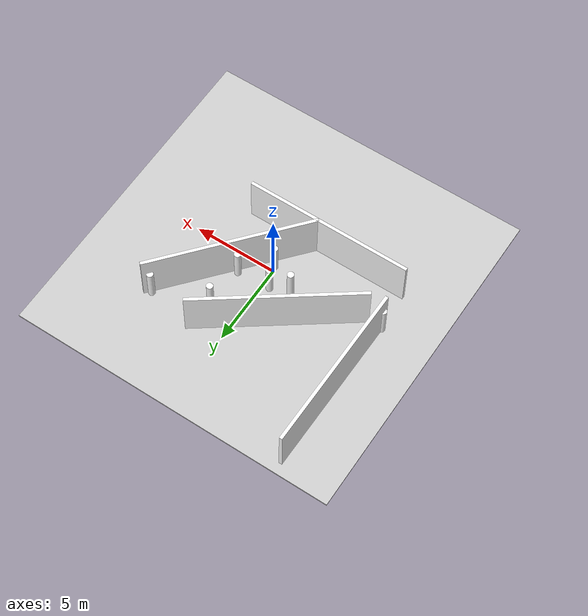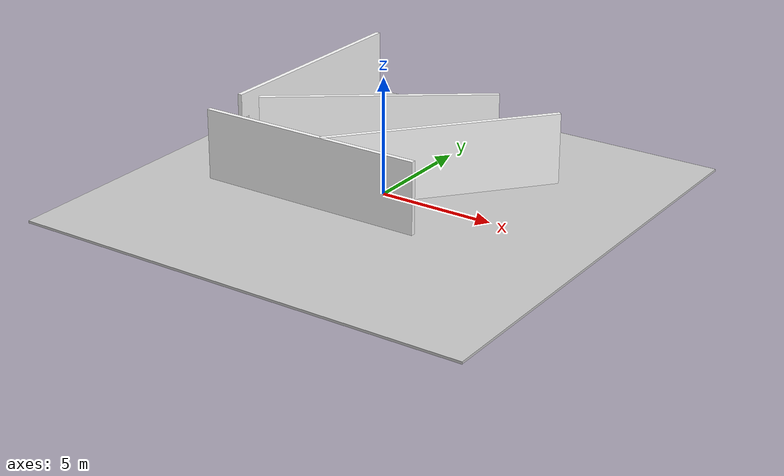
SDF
<?xml version="1.0"?>
<sdf version="1.8">
<world name="map">
    <physics name="1ms" type="ignored">
        <max_step_size>0.001</max_step_size>
        <real_time_factor>1.0</real_time_factor>
    </physics>

    <plugin filename="libgz-sim-physics-system.so" name="gz::sim::systems::Physics" />
    <plugin filename="libgz-sim-sensors-system.so" name="gz::sim::systems::Sensors">
        <render_engine>ogre2</render_engine>
    </plugin>
    <plugin filename="libgz-sim-contact-system" name="gz::sim::systems::Contact" />
    <plugin filename="libgz-sim-imu-system" name="gz::sim::systems::Imu" />
    <plugin filename="libgz-sim-scene-broadcaster-system.so" name="gz::sim::systems::SceneBroadcaster" />
    <plugin filename="libgz-sim-user-commands-system.so" name="gz::sim::systems::UserCommands" />

    <!-- sun and ground -->
    <light type="directional" name="sun">
        <cast_shadows>true</cast_shadows>
        <pose>0 0 10 0 0 0</pose>
        <diffuse>0.8 0.8 0.8 1</diffuse>
        <specular>0.2 0.2 0.2 1</specular>
        <attenuation>
        <range>1000</range>
        <constant>0.9</constant>
        <linear>0.01</linear>
        <quadratic>0.001</quadratic>
        </attenuation>
        <direction>-0.5 0.1 -0.9</direction>
    </light>

    <model name="ground_plane">
        <static>true</static>
        <link name="link">
            <pose>0 0 -0.05 0 0 0</pose>
            <collision name="collision">
                <geometry>
                    <box>
                        <size>50 50 0.1</size>
                    </box>
                </geometry>
            </collision>
            <visual name="visual">
                <geometry>
                    <box>
                        <size>20 20 0.1</size>
                    </box>
                </geometry>
                <material>
                    <ambient>0.8 0.8 0.8 1</ambient>
                    <diffuse>0.8 0.8 0.8 1</diffuse>
                    <specular>0.8 0.8 0.8 1</specular>
                </material>
            </visual>
        </link>
    </model>

    <!-- obstacles -->
    <model name="w1">
        <pose>-2 2.6 0 0 0 0.63</pose>
        <static>1</static>
        <link name="main">
            <visual name="wall">
                <pose>0 0 1.5 0 0 0</pose>
                <geometry>
                    <box><size>10 0.2 3.1</size></box>
                </geometry>
                <material>
                    <ambient>0.3 0.3 0.3 1</ambient>
                    <diffuse>1.0 1.0 1.0 1</diffuse>
                </material>
            </visual>
        </link>
    </model>

    <model name="w2">
        <pose>-1.85 -2.6 0 0 0 0</pose>
        <static>1</static>
        <link name="main">
            <visual name="wall">
                <pose>0 0 1.5 0 0 0</pose>
                <geometry>
                    <box><size>10 0.2 3.1</size></box>
                </geometry>
                <material>
                    <ambient>0.3 0.3 0.3 1</ambient>
                    <diffuse>1.0 1.0 1.0 1</diffuse>
                </material>
            </visual>
        </link>
    </model>

    <model name="w3">
        <pose>2 1.2 0 0 0 0.87</pose>
        <static>1</static>
        <link name="main">
            <visual name="wall">
                <pose>0 0 1.5 0 0 0</pose>
                <geometry>
                    <box><size>10 0.2 3.1</size></box>
                </geometry>
                <material>
                    <ambient>0.3 0.3 0.3 1</ambient>
                    <diffuse>1.0 1.0 1.0 1</diffuse>
                </material>
            </visual>
        </link>
    </model>

    <model name="w4">
        <pose>-6.8 4.4 0 0 0 1.56</pose>
        <static>1</static>
        <link name="main">
            <visual name="wall">
                <pose>0 0 1.5 0 0 0</pose>
                <geometry>
                    <box><size>10 0.2 3.1</size></box>
                </geometry>
                <material>
                    <ambient>0.3 0.3 0.3 1</ambient>
                    <diffuse>1.0 1.0 1.0 1</diffuse>
                </material>
            </visual>
        </link>
    </model>

    <model name="p1">
        <pose>-0.42 1 1 0 0 0</pose>
        <static>1</static>
        <link name="main">
            <visual name="pillar">
                <geometry>
                    <cylinder><radius>0.2</radius><length>2</length></cylinder>
                </geometry>
                <material>
                    <ambient>0.3 0.3 0.3 1</ambient>
                    <diffuse>1.0 1.0 1.0 1</diffuse>
                </material>
            </visual>
        </link>
    </model>

    <model name="p2">
        <pose>0.1 -0.3 1 0 0 0</pose>
        <static>1</static>
        <link name="main">
            <visual name="pillar">
                <geometry>
                    <cylinder><radius>0.2</radius><length>2</length></cylinder>
                </geometry>
                <material>
                    <ambient>0.3 0.3 0.3 1</ambient>
                    <diffuse>1.0 1.0 1.0 1</diffuse>
                </material>
            </visual>
        </link>
    </model>

    <model name="p3">
        <pose>-6.9 -0.27 1 0 0 0</pose>
        <static>1</static>
        <link name="main">
            <visual name="pillar">
                <geometry>
                    <cylinder><radius>0.2</radius><length>2</length></cylinder>
                </geometry>
                <material>
                    <ambient>0.3 0.3 0.3 1</ambient>
                    <diffuse>1.0 1.0 1.0 1</diffuse>
                </material>
            </visual>
        </link>
    </model>

    <model name="p4">
        <pose>-1.54 0.6 1 0 0 0</pose>
        <static>1</static>
        <link name="main">
            <visual name="pillar">
                <geometry>
                    <cylinder><radius>0.2</radius><length>2</length></cylinder>
                </geometry>
                <material>
                    <ambient>0.3 0.3 0.3 1</ambient>
                    <diffuse>1.0 1.0 1.0 1</diffuse>
                </material>
            </visual>
        </link>
    </model>

    <model name="p5">
        <pose>1.58 1.13 1 0 0 0</pose>
        <static>1</static>
        <link name="main">
            <visual name="pillar">
                <geometry>
                    <cylinder><radius>0.2</radius><length>2</length></cylinder>
                </geometry>
                <material>
                    <ambient>0.3 0.3 0.3 1</ambient>
                    <diffuse>1.0 1.0 1.0 1</diffuse>
                </material>
            </visual>
        </link>
    </model>

    <model name="p6">
        <pose>1.7 3.6 1 0 0 0</pose>
        <static>1</static>
        <link name="main">
            <visual name="pillar">
                <geometry>
                    <cylinder><radius>0.2</radius><length>2</length></cylinder>
                </geometry>
                <material>
                    <ambient>0.3 0.3 0.3 1</ambient>
                    <diffuse>1.0 1.0 1.0 1</diffuse>
                </material>
            </visual>
        </link>
    </model>

    <model name="p7">
        <pose>4.8 4.8 1 0 0 0</pose>
        <static>1</static>
        <link name="main">
            <visual name="pillar">
                <geometry>
                    <cylinder><radius>0.2</radius><length>2</length></cylinder>
                </geometry>
                <material>
                    <ambient>0.3 0.3 0.3 1</ambient>
                    <diffuse>1.0 1.0 1.0 1</diffuse>
                </material>
            </visual>
        </link>
    </model>

</world>
</sdf>
